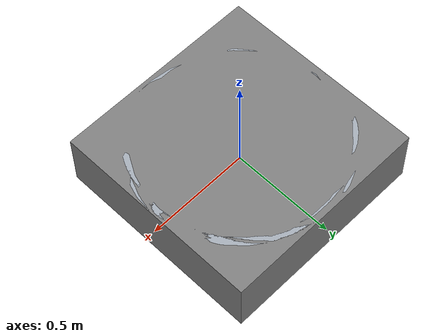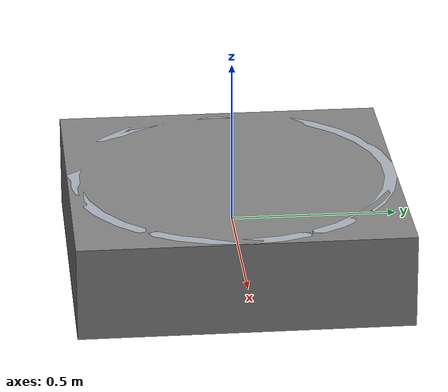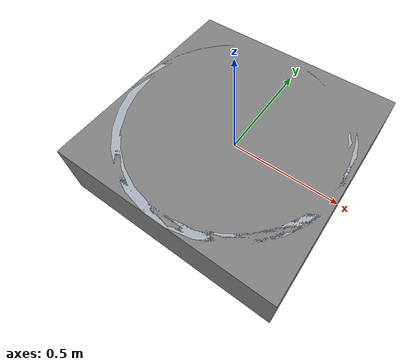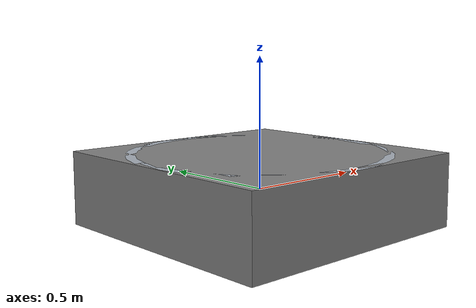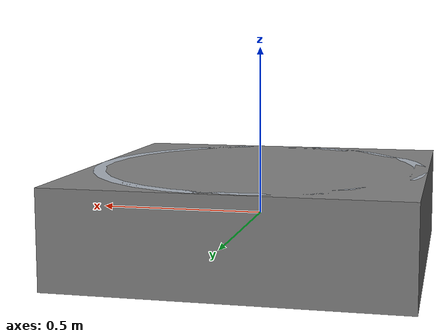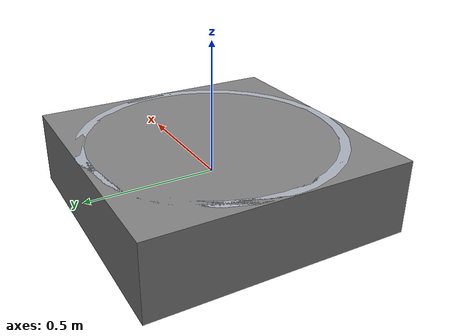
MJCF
<mujoco model="asset">
  <asset>
    <mesh name="bullet_pan_visual" file="bullet_pan.normalized.obj"/>
    <mesh name="bullet_pan_collision" file="bullet_pan.collision_box.obj"/>
  </asset>
  <worldbody><body name="bullet_pan">
    <geom type="mesh" mesh="bullet_pan_visual" contype="0" conaffinity="0" rgba="0.65 0.68 0.72 1"/>
    <geom type="mesh" mesh="bullet_pan_collision" density="1000"/>
  </body></worldbody>
</mujoco>
